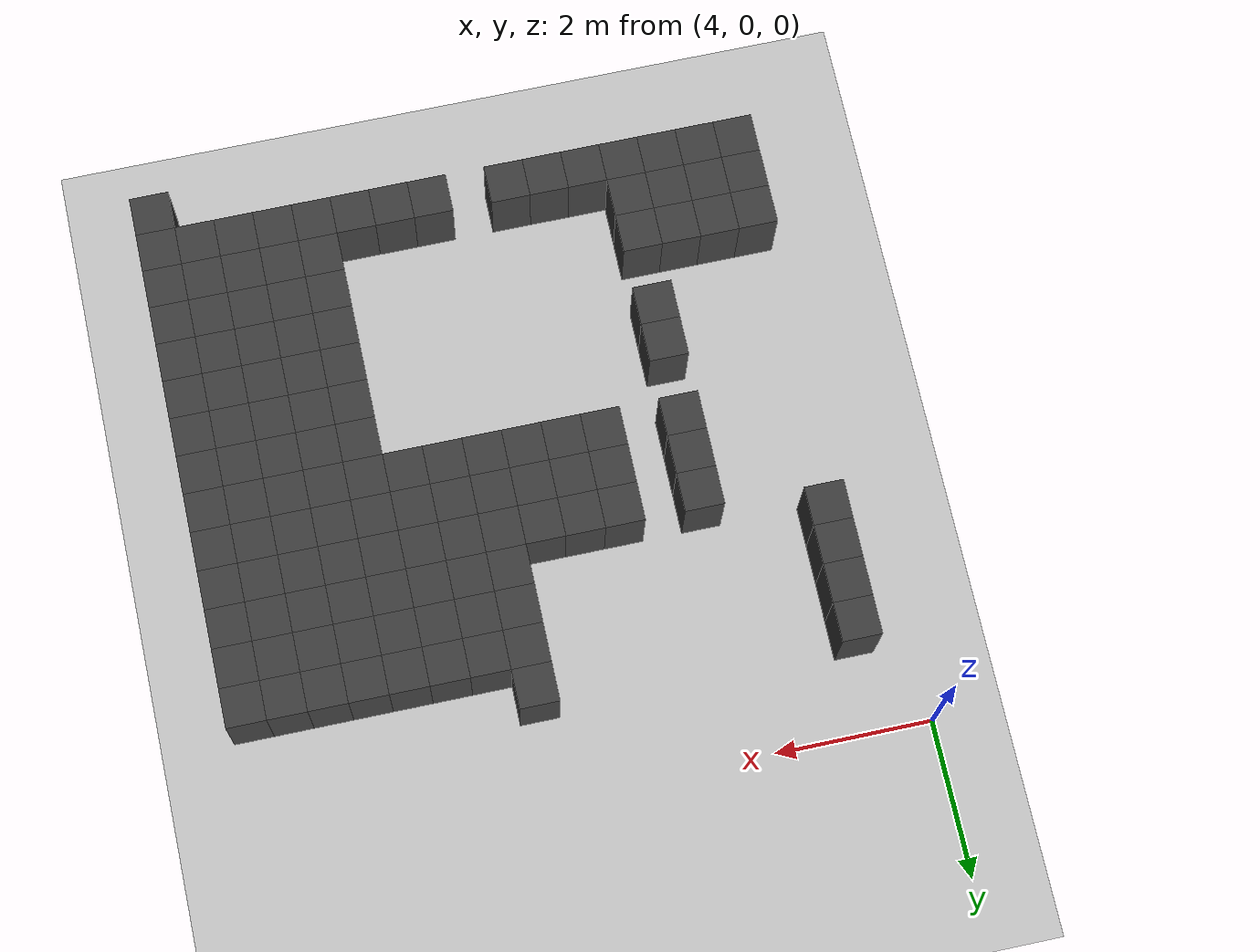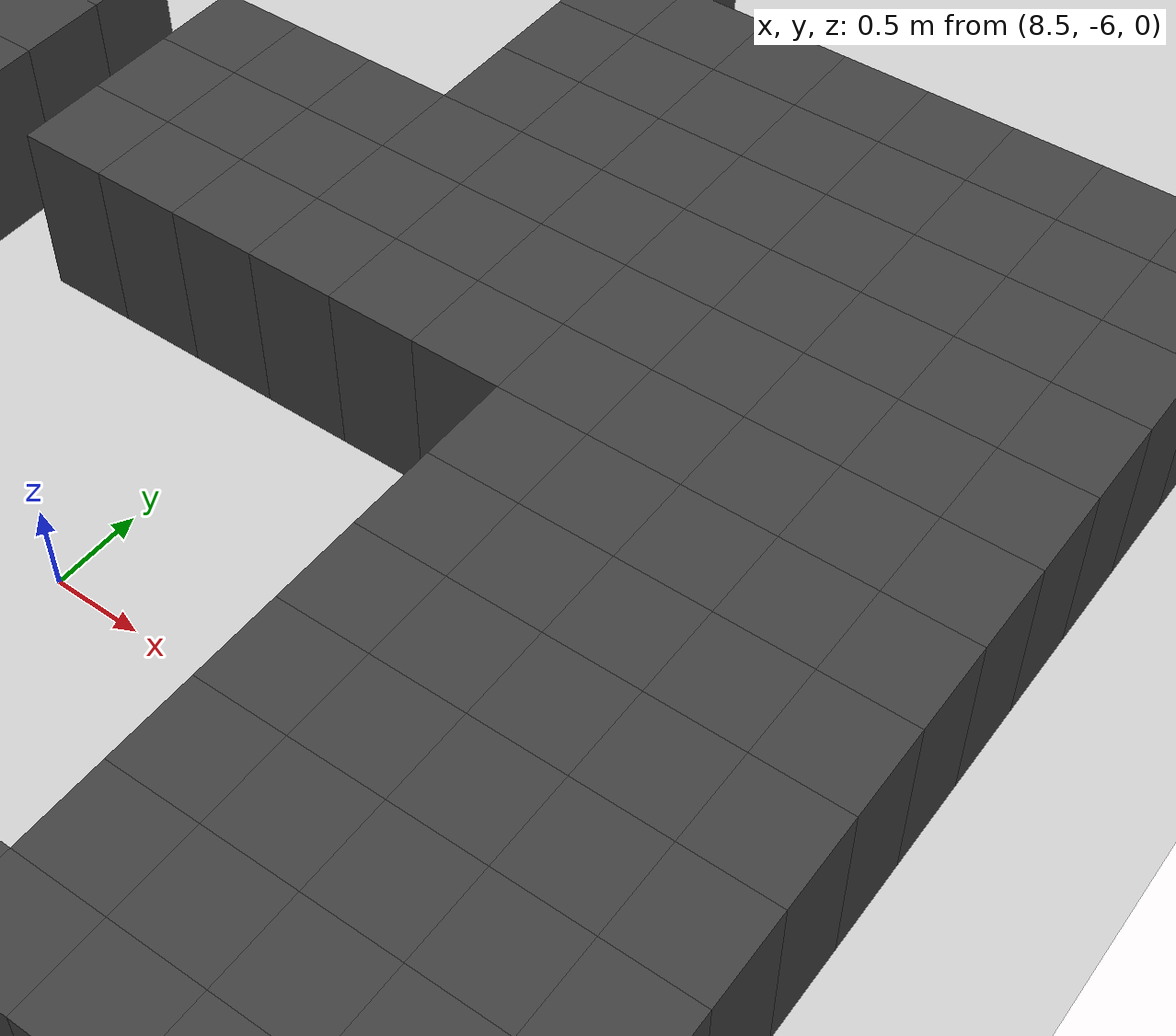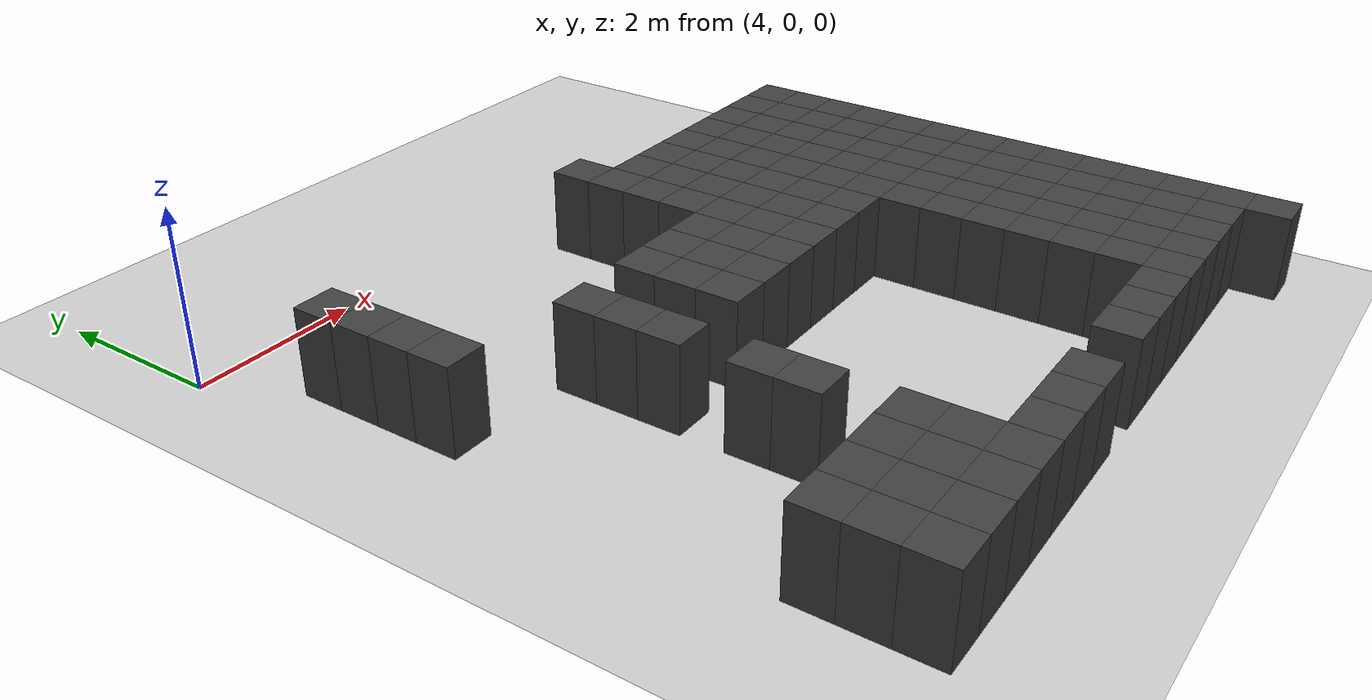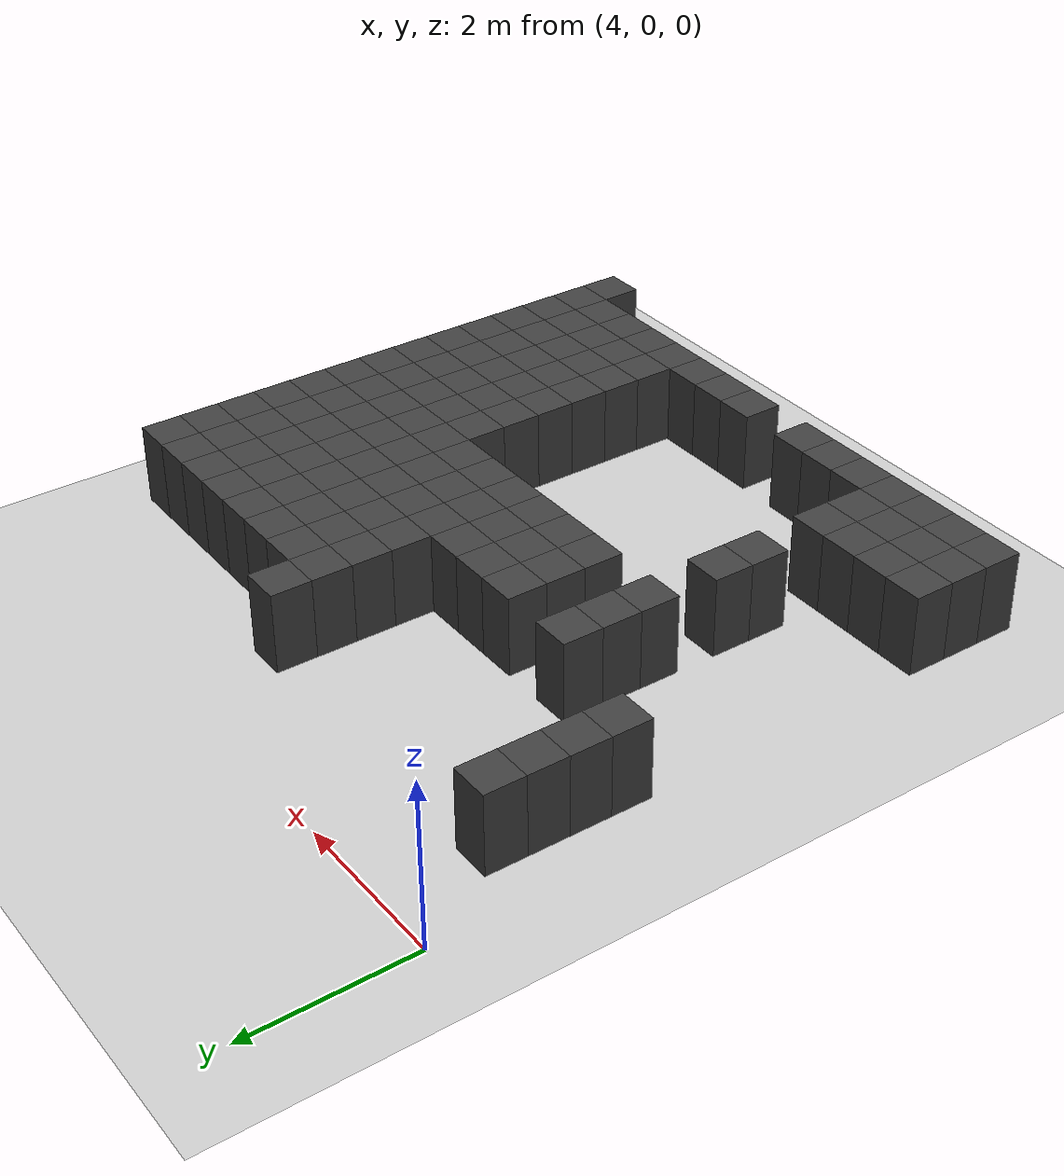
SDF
<sdf version="1.7">
 <world name="map_14706">
  <model name="ground_plane">
   <static>true</static>
   <link name="link">
    <collision name="collision">
     <geometry><plane><normal>0 0 1</normal><size>200 200</size></plane></geometry>
    </collision>
    <visual name="visual">
     <geometry><plane><normal>0 0 1</normal><size>200 200</size></plane></geometry>
     <material><ambient>0.8 0.8 0.8 1</ambient><diffuse>0.8 0.8 0.8 1</diffuse></material>
    </visual>
   </link>
  </model>
  <model name="maze_environment">
   <static>true</static>
   <link name="wall_932">
    <pose>4.750 -1.250 0.500 0 0 0</pose>
    <collision name="col"><geometry><box><size>0.5 0.5 1.0</size></box></geometry></collision>
    <visual name="vis">
     <geometry><box><size>0.5 0.5 1.0</size></box></geometry>
     <material><ambient>0.15 0.15 0.15 1</ambient><diffuse>0.25 0.25 0.25 1</diffuse></material>
    </visual>
   </link>
   <link name="wall_933">
    <pose>8.750 -1.250 0.500 0 0 0</pose>
    <collision name="col"><geometry><box><size>0.5 0.5 1.0</size></box></geometry></collision>
    <visual name="vis">
     <geometry><box><size>0.5 0.5 1.0</size></box></geometry>
     <material><ambient>0.15 0.15 0.15 1</ambient><diffuse>0.25 0.25 0.25 1</diffuse></material>
    </visual>
   </link>
   <link name="wall_974">
    <pose>4.750 -1.750 0.500 0 0 0</pose>
    <collision name="col"><geometry><box><size>0.5 0.5 1.0</size></box></geometry></collision>
    <visual name="vis">
     <geometry><box><size>0.5 0.5 1.0</size></box></geometry>
     <material><ambient>0.15 0.15 0.15 1</ambient><diffuse>0.25 0.25 0.25 1</diffuse></material>
    </visual>
   </link>
   <link name="wall_975">
    <pose>8.750 -1.750 0.500 0 0 0</pose>
    <collision name="col"><geometry><box><size>0.5 0.5 1.0</size></box></geometry></collision>
    <visual name="vis">
     <geometry><box><size>0.5 0.5 1.0</size></box></geometry>
     <material><ambient>0.15 0.15 0.15 1</ambient><diffuse>0.25 0.25 0.25 1</diffuse></material>
    </visual>
   </link>
   <link name="wall_976">
    <pose>9.250 -1.750 0.500 0 0 0</pose>
    <collision name="col"><geometry><box><size>0.5 0.5 1.0</size></box></geometry></collision>
    <visual name="vis">
     <geometry><box><size>0.5 0.5 1.0</size></box></geometry>
     <material><ambient>0.15 0.15 0.15 1</ambient><diffuse>0.25 0.25 0.25 1</diffuse></material>
    </visual>
   </link>
   <link name="wall_977">
    <pose>9.750 -1.750 0.500 0 0 0</pose>
    <collision name="col"><geometry><box><size>0.5 0.5 1.0</size></box></geometry></collision>
    <visual name="vis">
     <geometry><box><size>0.5 0.5 1.0</size></box></geometry>
     <material><ambient>0.15 0.15 0.15 1</ambient><diffuse>0.25 0.25 0.25 1</diffuse></material>
    </visual>
   </link>
   <link name="wall_978">
    <pose>10.250 -1.750 0.500 0 0 0</pose>
    <collision name="col"><geometry><box><size>0.5 0.5 1.0</size></box></geometry></collision>
    <visual name="vis">
     <geometry><box><size>0.5 0.5 1.0</size></box></geometry>
     <material><ambient>0.15 0.15 0.15 1</ambient><diffuse>0.25 0.25 0.25 1</diffuse></material>
    </visual>
   </link>
   <link name="wall_979">
    <pose>10.750 -1.750 0.500 0 0 0</pose>
    <collision name="col"><geometry><box><size>0.5 0.5 1.0</size></box></geometry></collision>
    <visual name="vis">
     <geometry><box><size>0.5 0.5 1.0</size></box></geometry>
     <material><ambient>0.15 0.15 0.15 1</ambient><diffuse>0.25 0.25 0.25 1</diffuse></material>
    </visual>
   </link>
   <link name="wall_980">
    <pose>11.250 -1.750 0.500 0 0 0</pose>
    <collision name="col"><geometry><box><size>0.5 0.5 1.0</size></box></geometry></collision>
    <visual name="vis">
     <geometry><box><size>0.5 0.5 1.0</size></box></geometry>
     <material><ambient>0.15 0.15 0.15 1</ambient><diffuse>0.25 0.25 0.25 1</diffuse></material>
    </visual>
   </link>
   <link name="wall_981">
    <pose>11.750 -1.750 0.500 0 0 0</pose>
    <collision name="col"><geometry><box><size>0.5 0.5 1.0</size></box></geometry></collision>
    <visual name="vis">
     <geometry><box><size>0.5 0.5 1.0</size></box></geometry>
     <material><ambient>0.15 0.15 0.15 1</ambient><diffuse>0.25 0.25 0.25 1</diffuse></material>
    </visual>
   </link>
   <link name="wall_982">
    <pose>12.250 -1.750 0.500 0 0 0</pose>
    <collision name="col"><geometry><box><size>0.5 0.5 1.0</size></box></geometry></collision>
    <visual name="vis">
     <geometry><box><size>0.5 0.5 1.0</size></box></geometry>
     <material><ambient>0.15 0.15 0.15 1</ambient><diffuse>0.25 0.25 0.25 1</diffuse></material>
    </visual>
   </link>
   <link name="wall_1016">
    <pose>4.750 -2.250 0.500 0 0 0</pose>
    <collision name="col"><geometry><box><size>0.5 0.5 1.0</size></box></geometry></collision>
    <visual name="vis">
     <geometry><box><size>0.5 0.5 1.0</size></box></geometry>
     <material><ambient>0.15 0.15 0.15 1</ambient><diffuse>0.25 0.25 0.25 1</diffuse></material>
    </visual>
   </link>
   <link name="wall_1017">
    <pose>8.750 -2.250 0.500 0 0 0</pose>
    <collision name="col"><geometry><box><size>0.5 0.5 1.0</size></box></geometry></collision>
    <visual name="vis">
     <geometry><box><size>0.5 0.5 1.0</size></box></geometry>
     <material><ambient>0.15 0.15 0.15 1</ambient><diffuse>0.25 0.25 0.25 1</diffuse></material>
    </visual>
   </link>
   <link name="wall_1018">
    <pose>9.250 -2.250 0.500 0 0 0</pose>
    <collision name="col"><geometry><box><size>0.5 0.5 1.0</size></box></geometry></collision>
    <visual name="vis">
     <geometry><box><size>0.5 0.5 1.0</size></box></geometry>
     <material><ambient>0.15 0.15 0.15 1</ambient><diffuse>0.25 0.25 0.25 1</diffuse></material>
    </visual>
   </link>
   <link name="wall_1019">
    <pose>9.750 -2.250 0.500 0 0 0</pose>
    <collision name="col"><geometry><box><size>0.5 0.5 1.0</size></box></geometry></collision>
    <visual name="vis">
     <geometry><box><size>0.5 0.5 1.0</size></box></geometry>
     <material><ambient>0.15 0.15 0.15 1</ambient><diffuse>0.25 0.25 0.25 1</diffuse></material>
    </visual>
   </link>
   <link name="wall_1020">
    <pose>10.250 -2.250 0.500 0 0 0</pose>
    <collision name="col"><geometry><box><size>0.5 0.5 1.0</size></box></geometry></collision>
    <visual name="vis">
     <geometry><box><size>0.5 0.5 1.0</size></box></geometry>
     <material><ambient>0.15 0.15 0.15 1</ambient><diffuse>0.25 0.25 0.25 1</diffuse></material>
    </visual>
   </link>
   <link name="wall_1021">
    <pose>10.750 -2.250 0.500 0 0 0</pose>
    <collision name="col"><geometry><box><size>0.5 0.5 1.0</size></box></geometry></collision>
    <visual name="vis">
     <geometry><box><size>0.5 0.5 1.0</size></box></geometry>
     <material><ambient>0.15 0.15 0.15 1</ambient><diffuse>0.25 0.25 0.25 1</diffuse></material>
    </visual>
   </link>
   <link name="wall_1022">
    <pose>11.250 -2.250 0.500 0 0 0</pose>
    <collision name="col"><geometry><box><size>0.5 0.5 1.0</size></box></geometry></collision>
    <visual name="vis">
     <geometry><box><size>0.5 0.5 1.0</size></box></geometry>
     <material><ambient>0.15 0.15 0.15 1</ambient><diffuse>0.25 0.25 0.25 1</diffuse></material>
    </visual>
   </link>
   <link name="wall_1023">
    <pose>11.750 -2.250 0.500 0 0 0</pose>
    <collision name="col"><geometry><box><size>0.5 0.5 1.0</size></box></geometry></collision>
    <visual name="vis">
     <geometry><box><size>0.5 0.5 1.0</size></box></geometry>
     <material><ambient>0.15 0.15 0.15 1</ambient><diffuse>0.25 0.25 0.25 1</diffuse></material>
    </visual>
   </link>
   <link name="wall_1024">
    <pose>12.250 -2.250 0.500 0 0 0</pose>
    <collision name="col"><geometry><box><size>0.5 0.5 1.0</size></box></geometry></collision>
    <visual name="vis">
     <geometry><box><size>0.5 0.5 1.0</size></box></geometry>
     <material><ambient>0.15 0.15 0.15 1</ambient><diffuse>0.25 0.25 0.25 1</diffuse></material>
    </visual>
   </link>
   <link name="wall_1058">
    <pose>4.750 -2.750 0.500 0 0 0</pose>
    <collision name="col"><geometry><box><size>0.5 0.5 1.0</size></box></geometry></collision>
    <visual name="vis">
     <geometry><box><size>0.5 0.5 1.0</size></box></geometry>
     <material><ambient>0.15 0.15 0.15 1</ambient><diffuse>0.25 0.25 0.25 1</diffuse></material>
    </visual>
   </link>
   <link name="wall_1059">
    <pose>8.750 -2.750 0.500 0 0 0</pose>
    <collision name="col"><geometry><box><size>0.5 0.5 1.0</size></box></geometry></collision>
    <visual name="vis">
     <geometry><box><size>0.5 0.5 1.0</size></box></geometry>
     <material><ambient>0.15 0.15 0.15 1</ambient><diffuse>0.25 0.25 0.25 1</diffuse></material>
    </visual>
   </link>
   <link name="wall_1060">
    <pose>9.250 -2.750 0.500 0 0 0</pose>
    <collision name="col"><geometry><box><size>0.5 0.5 1.0</size></box></geometry></collision>
    <visual name="vis">
     <geometry><box><size>0.5 0.5 1.0</size></box></geometry>
     <material><ambient>0.15 0.15 0.15 1</ambient><diffuse>0.25 0.25 0.25 1</diffuse></material>
    </visual>
   </link>
   <link name="wall_1061">
    <pose>9.750 -2.750 0.500 0 0 0</pose>
    <collision name="col"><geometry><box><size>0.5 0.5 1.0</size></box></geometry></collision>
    <visual name="vis">
     <geometry><box><size>0.5 0.5 1.0</size></box></geometry>
     <material><ambient>0.15 0.15 0.15 1</ambient><diffuse>0.25 0.25 0.25 1</diffuse></material>
    </visual>
   </link>
   <link name="wall_1062">
    <pose>10.250 -2.750 0.500 0 0 0</pose>
    <collision name="col"><geometry><box><size>0.5 0.5 1.0</size></box></geometry></collision>
    <visual name="vis">
     <geometry><box><size>0.5 0.5 1.0</size></box></geometry>
     <material><ambient>0.15 0.15 0.15 1</ambient><diffuse>0.25 0.25 0.25 1</diffuse></material>
    </visual>
   </link>
   <link name="wall_1063">
    <pose>10.750 -2.750 0.500 0 0 0</pose>
    <collision name="col"><geometry><box><size>0.5 0.5 1.0</size></box></geometry></collision>
    <visual name="vis">
     <geometry><box><size>0.5 0.5 1.0</size></box></geometry>
     <material><ambient>0.15 0.15 0.15 1</ambient><diffuse>0.25 0.25 0.25 1</diffuse></material>
    </visual>
   </link>
   <link name="wall_1064">
    <pose>11.250 -2.750 0.500 0 0 0</pose>
    <collision name="col"><geometry><box><size>0.5 0.5 1.0</size></box></geometry></collision>
    <visual name="vis">
     <geometry><box><size>0.5 0.5 1.0</size></box></geometry>
     <material><ambient>0.15 0.15 0.15 1</ambient><diffuse>0.25 0.25 0.25 1</diffuse></material>
    </visual>
   </link>
   <link name="wall_1065">
    <pose>11.750 -2.750 0.500 0 0 0</pose>
    <collision name="col"><geometry><box><size>0.5 0.5 1.0</size></box></geometry></collision>
    <visual name="vis">
     <geometry><box><size>0.5 0.5 1.0</size></box></geometry>
     <material><ambient>0.15 0.15 0.15 1</ambient><diffuse>0.25 0.25 0.25 1</diffuse></material>
    </visual>
   </link>
   <link name="wall_1066">
    <pose>12.250 -2.750 0.500 0 0 0</pose>
    <collision name="col"><geometry><box><size>0.5 0.5 1.0</size></box></geometry></collision>
    <visual name="vis">
     <geometry><box><size>0.5 0.5 1.0</size></box></geometry>
     <material><ambient>0.15 0.15 0.15 1</ambient><diffuse>0.25 0.25 0.25 1</diffuse></material>
    </visual>
   </link>
   <link name="wall_1098">
    <pose>6.250 -3.250 0.500 0 0 0</pose>
    <collision name="col"><geometry><box><size>0.5 0.5 1.0</size></box></geometry></collision>
    <visual name="vis">
     <geometry><box><size>0.5 0.5 1.0</size></box></geometry>
     <material><ambient>0.15 0.15 0.15 1</ambient><diffuse>0.25 0.25 0.25 1</diffuse></material>
    </visual>
   </link>
   <link name="wall_1099">
    <pose>7.250 -3.250 0.500 0 0 0</pose>
    <collision name="col"><geometry><box><size>0.5 0.5 1.0</size></box></geometry></collision>
    <visual name="vis">
     <geometry><box><size>0.5 0.5 1.0</size></box></geometry>
     <material><ambient>0.15 0.15 0.15 1</ambient><diffuse>0.25 0.25 0.25 1</diffuse></material>
    </visual>
   </link>
   <link name="wall_1100">
    <pose>7.750 -3.250 0.500 0 0 0</pose>
    <collision name="col"><geometry><box><size>0.5 0.5 1.0</size></box></geometry></collision>
    <visual name="vis">
     <geometry><box><size>0.5 0.5 1.0</size></box></geometry>
     <material><ambient>0.15 0.15 0.15 1</ambient><diffuse>0.25 0.25 0.25 1</diffuse></material>
    </visual>
   </link>
   <link name="wall_1101">
    <pose>8.250 -3.250 0.500 0 0 0</pose>
    <collision name="col"><geometry><box><size>0.5 0.5 1.0</size></box></geometry></collision>
    <visual name="vis">
     <geometry><box><size>0.5 0.5 1.0</size></box></geometry>
     <material><ambient>0.15 0.15 0.15 1</ambient><diffuse>0.25 0.25 0.25 1</diffuse></material>
    </visual>
   </link>
   <link name="wall_1102">
    <pose>8.750 -3.250 0.500 0 0 0</pose>
    <collision name="col"><geometry><box><size>0.5 0.5 1.0</size></box></geometry></collision>
    <visual name="vis">
     <geometry><box><size>0.5 0.5 1.0</size></box></geometry>
     <material><ambient>0.15 0.15 0.15 1</ambient><diffuse>0.25 0.25 0.25 1</diffuse></material>
    </visual>
   </link>
   <link name="wall_1103">
    <pose>9.250 -3.250 0.500 0 0 0</pose>
    <collision name="col"><geometry><box><size>0.5 0.5 1.0</size></box></geometry></collision>
    <visual name="vis">
     <geometry><box><size>0.5 0.5 1.0</size></box></geometry>
     <material><ambient>0.15 0.15 0.15 1</ambient><diffuse>0.25 0.25 0.25 1</diffuse></material>
    </visual>
   </link>
   <link name="wall_1104">
    <pose>9.750 -3.250 0.500 0 0 0</pose>
    <collision name="col"><geometry><box><size>0.5 0.5 1.0</size></box></geometry></collision>
    <visual name="vis">
     <geometry><box><size>0.5 0.5 1.0</size></box></geometry>
     <material><ambient>0.15 0.15 0.15 1</ambient><diffuse>0.25 0.25 0.25 1</diffuse></material>
    </visual>
   </link>
   <link name="wall_1105">
    <pose>10.250 -3.250 0.500 0 0 0</pose>
    <collision name="col"><geometry><box><size>0.5 0.5 1.0</size></box></geometry></collision>
    <visual name="vis">
     <geometry><box><size>0.5 0.5 1.0</size></box></geometry>
     <material><ambient>0.15 0.15 0.15 1</ambient><diffuse>0.25 0.25 0.25 1</diffuse></material>
    </visual>
   </link>
   <link name="wall_1106">
    <pose>10.750 -3.250 0.500 0 0 0</pose>
    <collision name="col"><geometry><box><size>0.5 0.5 1.0</size></box></geometry></collision>
    <visual name="vis">
     <geometry><box><size>0.5 0.5 1.0</size></box></geometry>
     <material><ambient>0.15 0.15 0.15 1</ambient><diffuse>0.25 0.25 0.25 1</diffuse></material>
    </visual>
   </link>
   <link name="wall_1107">
    <pose>11.250 -3.250 0.500 0 0 0</pose>
    <collision name="col"><geometry><box><size>0.5 0.5 1.0</size></box></geometry></collision>
    <visual name="vis">
     <geometry><box><size>0.5 0.5 1.0</size></box></geometry>
     <material><ambient>0.15 0.15 0.15 1</ambient><diffuse>0.25 0.25 0.25 1</diffuse></material>
    </visual>
   </link>
   <link name="wall_1108">
    <pose>11.750 -3.250 0.500 0 0 0</pose>
    <collision name="col"><geometry><box><size>0.5 0.5 1.0</size></box></geometry></collision>
    <visual name="vis">
     <geometry><box><size>0.5 0.5 1.0</size></box></geometry>
     <material><ambient>0.15 0.15 0.15 1</ambient><diffuse>0.25 0.25 0.25 1</diffuse></material>
    </visual>
   </link>
   <link name="wall_1109">
    <pose>12.250 -3.250 0.500 0 0 0</pose>
    <collision name="col"><geometry><box><size>0.5 0.5 1.0</size></box></geometry></collision>
    <visual name="vis">
     <geometry><box><size>0.5 0.5 1.0</size></box></geometry>
     <material><ambient>0.15 0.15 0.15 1</ambient><diffuse>0.25 0.25 0.25 1</diffuse></material>
    </visual>
   </link>
   <link name="wall_1141">
    <pose>6.250 -3.750 0.500 0 0 0</pose>
    <collision name="col"><geometry><box><size>0.5 0.5 1.0</size></box></geometry></collision>
    <visual name="vis">
     <geometry><box><size>0.5 0.5 1.0</size></box></geometry>
     <material><ambient>0.15 0.15 0.15 1</ambient><diffuse>0.25 0.25 0.25 1</diffuse></material>
    </visual>
   </link>
   <link name="wall_1142">
    <pose>7.250 -3.750 0.500 0 0 0</pose>
    <collision name="col"><geometry><box><size>0.5 0.5 1.0</size></box></geometry></collision>
    <visual name="vis">
     <geometry><box><size>0.5 0.5 1.0</size></box></geometry>
     <material><ambient>0.15 0.15 0.15 1</ambient><diffuse>0.25 0.25 0.25 1</diffuse></material>
    </visual>
   </link>
   <link name="wall_1143">
    <pose>7.750 -3.750 0.500 0 0 0</pose>
    <collision name="col"><geometry><box><size>0.5 0.5 1.0</size></box></geometry></collision>
    <visual name="vis">
     <geometry><box><size>0.5 0.5 1.0</size></box></geometry>
     <material><ambient>0.15 0.15 0.15 1</ambient><diffuse>0.25 0.25 0.25 1</diffuse></material>
    </visual>
   </link>
   <link name="wall_1144">
    <pose>8.250 -3.750 0.500 0 0 0</pose>
    <collision name="col"><geometry><box><size>0.5 0.5 1.0</size></box></geometry></collision>
    <visual name="vis">
     <geometry><box><size>0.5 0.5 1.0</size></box></geometry>
     <material><ambient>0.15 0.15 0.15 1</ambient><diffuse>0.25 0.25 0.25 1</diffuse></material>
    </visual>
   </link>
   <link name="wall_1145">
    <pose>8.750 -3.750 0.500 0 0 0</pose>
    <collision name="col"><geometry><box><size>0.5 0.5 1.0</size></box></geometry></collision>
    <visual name="vis">
     <geometry><box><size>0.5 0.5 1.0</size></box></geometry>
     <material><ambient>0.15 0.15 0.15 1</ambient><diffuse>0.25 0.25 0.25 1</diffuse></material>
    </visual>
   </link>
   <link name="wall_1146">
    <pose>9.250 -3.750 0.500 0 0 0</pose>
    <collision name="col"><geometry><box><size>0.5 0.5 1.0</size></box></geometry></collision>
    <visual name="vis">
     <geometry><box><size>0.5 0.5 1.0</size></box></geometry>
     <material><ambient>0.15 0.15 0.15 1</ambient><diffuse>0.25 0.25 0.25 1</diffuse></material>
    </visual>
   </link>
   <link name="wall_1147">
    <pose>9.750 -3.750 0.500 0 0 0</pose>
    <collision name="col"><geometry><box><size>0.5 0.5 1.0</size></box></geometry></collision>
    <visual name="vis">
     <geometry><box><size>0.5 0.5 1.0</size></box></geometry>
     <material><ambient>0.15 0.15 0.15 1</ambient><diffuse>0.25 0.25 0.25 1</diffuse></material>
    </visual>
   </link>
   <link name="wall_1148">
    <pose>10.250 -3.750 0.500 0 0 0</pose>
    <collision name="col"><geometry><box><size>0.5 0.5 1.0</size></box></geometry></collision>
    <visual name="vis">
     <geometry><box><size>0.5 0.5 1.0</size></box></geometry>
     <material><ambient>0.15 0.15 0.15 1</ambient><diffuse>0.25 0.25 0.25 1</diffuse></material>
    </visual>
   </link>
   <link name="wall_1149">
    <pose>10.750 -3.750 0.500 0 0 0</pose>
    <collision name="col"><geometry><box><size>0.5 0.5 1.0</size></box></geometry></collision>
    <visual name="vis">
     <geometry><box><size>0.5 0.5 1.0</size></box></geometry>
     <material><ambient>0.15 0.15 0.15 1</ambient><diffuse>0.25 0.25 0.25 1</diffuse></material>
    </visual>
   </link>
   <link name="wall_1150">
    <pose>11.250 -3.750 0.500 0 0 0</pose>
    <collision name="col"><geometry><box><size>0.5 0.5 1.0</size></box></geometry></collision>
    <visual name="vis">
     <geometry><box><size>0.5 0.5 1.0</size></box></geometry>
     <material><ambient>0.15 0.15 0.15 1</ambient><diffuse>0.25 0.25 0.25 1</diffuse></material>
    </visual>
   </link>
   <link name="wall_1151">
    <pose>11.750 -3.750 0.500 0 0 0</pose>
    <collision name="col"><geometry><box><size>0.5 0.5 1.0</size></box></geometry></collision>
    <visual name="vis">
     <geometry><box><size>0.5 0.5 1.0</size></box></geometry>
     <material><ambient>0.15 0.15 0.15 1</ambient><diffuse>0.25 0.25 0.25 1</diffuse></material>
    </visual>
   </link>
   <link name="wall_1152">
    <pose>12.250 -3.750 0.500 0 0 0</pose>
    <collision name="col"><geometry><box><size>0.5 0.5 1.0</size></box></geometry></collision>
    <visual name="vis">
     <geometry><box><size>0.5 0.5 1.0</size></box></geometry>
     <material><ambient>0.15 0.15 0.15 1</ambient><diffuse>0.25 0.25 0.25 1</diffuse></material>
    </visual>
   </link>
   <link name="wall_1184">
    <pose>6.250 -4.250 0.500 0 0 0</pose>
    <collision name="col"><geometry><box><size>0.5 0.5 1.0</size></box></geometry></collision>
    <visual name="vis">
     <geometry><box><size>0.5 0.5 1.0</size></box></geometry>
     <material><ambient>0.15 0.15 0.15 1</ambient><diffuse>0.25 0.25 0.25 1</diffuse></material>
    </visual>
   </link>
   <link name="wall_1185">
    <pose>7.250 -4.250 0.500 0 0 0</pose>
    <collision name="col"><geometry><box><size>0.5 0.5 1.0</size></box></geometry></collision>
    <visual name="vis">
     <geometry><box><size>0.5 0.5 1.0</size></box></geometry>
     <material><ambient>0.15 0.15 0.15 1</ambient><diffuse>0.25 0.25 0.25 1</diffuse></material>
    </visual>
   </link>
   <link name="wall_1186">
    <pose>7.750 -4.250 0.500 0 0 0</pose>
    <collision name="col"><geometry><box><size>0.5 0.5 1.0</size></box></geometry></collision>
    <visual name="vis">
     <geometry><box><size>0.5 0.5 1.0</size></box></geometry>
     <material><ambient>0.15 0.15 0.15 1</ambient><diffuse>0.25 0.25 0.25 1</diffuse></material>
    </visual>
   </link>
   <link name="wall_1187">
    <pose>8.250 -4.250 0.500 0 0 0</pose>
    <collision name="col"><geometry><box><size>0.5 0.5 1.0</size></box></geometry></collision>
    <visual name="vis">
     <geometry><box><size>0.5 0.5 1.0</size></box></geometry>
     <material><ambient>0.15 0.15 0.15 1</ambient><diffuse>0.25 0.25 0.25 1</diffuse></material>
    </visual>
   </link>
   <link name="wall_1188">
    <pose>8.750 -4.250 0.500 0 0 0</pose>
    <collision name="col"><geometry><box><size>0.5 0.5 1.0</size></box></geometry></collision>
    <visual name="vis">
     <geometry><box><size>0.5 0.5 1.0</size></box></geometry>
     <material><ambient>0.15 0.15 0.15 1</ambient><diffuse>0.25 0.25 0.25 1</diffuse></material>
    </visual>
   </link>
   <link name="wall_1189">
    <pose>9.250 -4.250 0.500 0 0 0</pose>
    <collision name="col"><geometry><box><size>0.5 0.5 1.0</size></box></geometry></collision>
    <visual name="vis">
     <geometry><box><size>0.5 0.5 1.0</size></box></geometry>
     <material><ambient>0.15 0.15 0.15 1</ambient><diffuse>0.25 0.25 0.25 1</diffuse></material>
    </visual>
   </link>
   <link name="wall_1190">
    <pose>9.750 -4.250 0.500 0 0 0</pose>
    <collision name="col"><geometry><box><size>0.5 0.5 1.0</size></box></geometry></collision>
    <visual name="vis">
     <geometry><box><size>0.5 0.5 1.0</size></box></geometry>
     <material><ambient>0.15 0.15 0.15 1</ambient><diffuse>0.25 0.25 0.25 1</diffuse></material>
    </visual>
   </link>
   <link name="wall_1191">
    <pose>10.250 -4.250 0.500 0 0 0</pose>
    <collision name="col"><geometry><box><size>0.5 0.5 1.0</size></box></geometry></collision>
    <visual name="vis">
     <geometry><box><size>0.5 0.5 1.0</size></box></geometry>
     <material><ambient>0.15 0.15 0.15 1</ambient><diffuse>0.25 0.25 0.25 1</diffuse></material>
    </visual>
   </link>
   <link name="wall_1192">
    <pose>10.750 -4.250 0.500 0 0 0</pose>
    <collision name="col"><geometry><box><size>0.5 0.5 1.0</size></box></geometry></collision>
    <visual name="vis">
     <geometry><box><size>0.5 0.5 1.0</size></box></geometry>
     <material><ambient>0.15 0.15 0.15 1</ambient><diffuse>0.25 0.25 0.25 1</diffuse></material>
    </visual>
   </link>
   <link name="wall_1193">
    <pose>11.250 -4.250 0.500 0 0 0</pose>
    <collision name="col"><geometry><box><size>0.5 0.5 1.0</size></box></geometry></collision>
    <visual name="vis">
     <geometry><box><size>0.5 0.5 1.0</size></box></geometry>
     <material><ambient>0.15 0.15 0.15 1</ambient><diffuse>0.25 0.25 0.25 1</diffuse></material>
    </visual>
   </link>
   <link name="wall_1194">
    <pose>11.750 -4.250 0.500 0 0 0</pose>
    <collision name="col"><geometry><box><size>0.5 0.5 1.0</size></box></geometry></collision>
    <visual name="vis">
     <geometry><box><size>0.5 0.5 1.0</size></box></geometry>
     <material><ambient>0.15 0.15 0.15 1</ambient><diffuse>0.25 0.25 0.25 1</diffuse></material>
    </visual>
   </link>
   <link name="wall_1195">
    <pose>12.250 -4.250 0.500 0 0 0</pose>
    <collision name="col"><geometry><box><size>0.5 0.5 1.0</size></box></geometry></collision>
    <visual name="vis">
     <geometry><box><size>0.5 0.5 1.0</size></box></geometry>
     <material><ambient>0.15 0.15 0.15 1</ambient><diffuse>0.25 0.25 0.25 1</diffuse></material>
    </visual>
   </link>
   <link name="wall_1227">
    <pose>10.250 -4.750 0.500 0 0 0</pose>
    <collision name="col"><geometry><box><size>0.5 0.5 1.0</size></box></geometry></collision>
    <visual name="vis">
     <geometry><box><size>0.5 0.5 1.0</size></box></geometry>
     <material><ambient>0.15 0.15 0.15 1</ambient><diffuse>0.25 0.25 0.25 1</diffuse></material>
    </visual>
   </link>
   <link name="wall_1228">
    <pose>10.750 -4.750 0.500 0 0 0</pose>
    <collision name="col"><geometry><box><size>0.5 0.5 1.0</size></box></geometry></collision>
    <visual name="vis">
     <geometry><box><size>0.5 0.5 1.0</size></box></geometry>
     <material><ambient>0.15 0.15 0.15 1</ambient><diffuse>0.25 0.25 0.25 1</diffuse></material>
    </visual>
   </link>
   <link name="wall_1229">
    <pose>11.250 -4.750 0.500 0 0 0</pose>
    <collision name="col"><geometry><box><size>0.5 0.5 1.0</size></box></geometry></collision>
    <visual name="vis">
     <geometry><box><size>0.5 0.5 1.0</size></box></geometry>
     <material><ambient>0.15 0.15 0.15 1</ambient><diffuse>0.25 0.25 0.25 1</diffuse></material>
    </visual>
   </link>
   <link name="wall_1230">
    <pose>11.750 -4.750 0.500 0 0 0</pose>
    <collision name="col"><geometry><box><size>0.5 0.5 1.0</size></box></geometry></collision>
    <visual name="vis">
     <geometry><box><size>0.5 0.5 1.0</size></box></geometry>
     <material><ambient>0.15 0.15 0.15 1</ambient><diffuse>0.25 0.25 0.25 1</diffuse></material>
    </visual>
   </link>
   <link name="wall_1231">
    <pose>12.250 -4.750 0.500 0 0 0</pose>
    <collision name="col"><geometry><box><size>0.5 0.5 1.0</size></box></geometry></collision>
    <visual name="vis">
     <geometry><box><size>0.5 0.5 1.0</size></box></geometry>
     <material><ambient>0.15 0.15 0.15 1</ambient><diffuse>0.25 0.25 0.25 1</diffuse></material>
    </visual>
   </link>
   <link name="wall_1263">
    <pose>6.250 -5.250 0.500 0 0 0</pose>
    <collision name="col"><geometry><box><size>0.5 0.5 1.0</size></box></geometry></collision>
    <visual name="vis">
     <geometry><box><size>0.5 0.5 1.0</size></box></geometry>
     <material><ambient>0.15 0.15 0.15 1</ambient><diffuse>0.25 0.25 0.25 1</diffuse></material>
    </visual>
   </link>
   <link name="wall_1264">
    <pose>10.250 -5.250 0.500 0 0 0</pose>
    <collision name="col"><geometry><box><size>0.5 0.5 1.0</size></box></geometry></collision>
    <visual name="vis">
     <geometry><box><size>0.5 0.5 1.0</size></box></geometry>
     <material><ambient>0.15 0.15 0.15 1</ambient><diffuse>0.25 0.25 0.25 1</diffuse></material>
    </visual>
   </link>
   <link name="wall_1265">
    <pose>10.750 -5.250 0.500 0 0 0</pose>
    <collision name="col"><geometry><box><size>0.5 0.5 1.0</size></box></geometry></collision>
    <visual name="vis">
     <geometry><box><size>0.5 0.5 1.0</size></box></geometry>
     <material><ambient>0.15 0.15 0.15 1</ambient><diffuse>0.25 0.25 0.25 1</diffuse></material>
    </visual>
   </link>
   <link name="wall_1266">
    <pose>11.250 -5.250 0.500 0 0 0</pose>
    <collision name="col"><geometry><box><size>0.5 0.5 1.0</size></box></geometry></collision>
    <visual name="vis">
     <geometry><box><size>0.5 0.5 1.0</size></box></geometry>
     <material><ambient>0.15 0.15 0.15 1</ambient><diffuse>0.25 0.25 0.25 1</diffuse></material>
    </visual>
   </link>
   <link name="wall_1267">
    <pose>11.750 -5.250 0.500 0 0 0</pose>
    <collision name="col"><geometry><box><size>0.5 0.5 1.0</size></box></geometry></collision>
    <visual name="vis">
     <geometry><box><size>0.5 0.5 1.0</size></box></geometry>
     <material><ambient>0.15 0.15 0.15 1</ambient><diffuse>0.25 0.25 0.25 1</diffuse></material>
    </visual>
   </link>
   <link name="wall_1268">
    <pose>12.250 -5.250 0.500 0 0 0</pose>
    <collision name="col"><geometry><box><size>0.5 0.5 1.0</size></box></geometry></collision>
    <visual name="vis">
     <geometry><box><size>0.5 0.5 1.0</size></box></geometry>
     <material><ambient>0.15 0.15 0.15 1</ambient><diffuse>0.25 0.25 0.25 1</diffuse></material>
    </visual>
   </link>
   <link name="wall_1300">
    <pose>6.250 -5.750 0.500 0 0 0</pose>
    <collision name="col"><geometry><box><size>0.5 0.5 1.0</size></box></geometry></collision>
    <visual name="vis">
     <geometry><box><size>0.5 0.5 1.0</size></box></geometry>
     <material><ambient>0.15 0.15 0.15 1</ambient><diffuse>0.25 0.25 0.25 1</diffuse></material>
    </visual>
   </link>
   <link name="wall_1301">
    <pose>10.250 -5.750 0.500 0 0 0</pose>
    <collision name="col"><geometry><box><size>0.5 0.5 1.0</size></box></geometry></collision>
    <visual name="vis">
     <geometry><box><size>0.5 0.5 1.0</size></box></geometry>
     <material><ambient>0.15 0.15 0.15 1</ambient><diffuse>0.25 0.25 0.25 1</diffuse></material>
    </visual>
   </link>
   <link name="wall_1302">
    <pose>10.750 -5.750 0.500 0 0 0</pose>
    <collision name="col"><geometry><box><size>0.5 0.5 1.0</size></box></geometry></collision>
    <visual name="vis">
     <geometry><box><size>0.5 0.5 1.0</size></box></geometry>
     <material><ambient>0.15 0.15 0.15 1</ambient><diffuse>0.25 0.25 0.25 1</diffuse></material>
    </visual>
   </link>
   <link name="wall_1303">
    <pose>11.250 -5.750 0.500 0 0 0</pose>
    <collision name="col"><geometry><box><size>0.5 0.5 1.0</size></box></geometry></collision>
    <visual name="vis">
     <geometry><box><size>0.5 0.5 1.0</size></box></geometry>
     <material><ambient>0.15 0.15 0.15 1</ambient><diffuse>0.25 0.25 0.25 1</diffuse></material>
    </visual>
   </link>
   <link name="wall_1304">
    <pose>11.750 -5.750 0.500 0 0 0</pose>
    <collision name="col"><geometry><box><size>0.5 0.5 1.0</size></box></geometry></collision>
    <visual name="vis">
     <geometry><box><size>0.5 0.5 1.0</size></box></geometry>
     <material><ambient>0.15 0.15 0.15 1</ambient><diffuse>0.25 0.25 0.25 1</diffuse></material>
    </visual>
   </link>
   <link name="wall_1305">
    <pose>12.250 -5.750 0.500 0 0 0</pose>
    <collision name="col"><geometry><box><size>0.5 0.5 1.0</size></box></geometry></collision>
    <visual name="vis">
     <geometry><box><size>0.5 0.5 1.0</size></box></geometry>
     <material><ambient>0.15 0.15 0.15 1</ambient><diffuse>0.25 0.25 0.25 1</diffuse></material>
    </visual>
   </link>
   <link name="wall_1337">
    <pose>10.250 -6.250 0.500 0 0 0</pose>
    <collision name="col"><geometry><box><size>0.5 0.5 1.0</size></box></geometry></collision>
    <visual name="vis">
     <geometry><box><size>0.5 0.5 1.0</size></box></geometry>
     <material><ambient>0.15 0.15 0.15 1</ambient><diffuse>0.25 0.25 0.25 1</diffuse></material>
    </visual>
   </link>
   <link name="wall_1338">
    <pose>10.750 -6.250 0.500 0 0 0</pose>
    <collision name="col"><geometry><box><size>0.5 0.5 1.0</size></box></geometry></collision>
    <visual name="vis">
     <geometry><box><size>0.5 0.5 1.0</size></box></geometry>
     <material><ambient>0.15 0.15 0.15 1</ambient><diffuse>0.25 0.25 0.25 1</diffuse></material>
    </visual>
   </link>
   <link name="wall_1339">
    <pose>11.250 -6.250 0.500 0 0 0</pose>
    <collision name="col"><geometry><box><size>0.5 0.5 1.0</size></box></geometry></collision>
    <visual name="vis">
     <geometry><box><size>0.5 0.5 1.0</size></box></geometry>
     <material><ambient>0.15 0.15 0.15 1</ambient><diffuse>0.25 0.25 0.25 1</diffuse></material>
    </visual>
   </link>
   <link name="wall_1340">
    <pose>11.750 -6.250 0.500 0 0 0</pose>
    <collision name="col"><geometry><box><size>0.5 0.5 1.0</size></box></geometry></collision>
    <visual name="vis">
     <geometry><box><size>0.5 0.5 1.0</size></box></geometry>
     <material><ambient>0.15 0.15 0.15 1</ambient><diffuse>0.25 0.25 0.25 1</diffuse></material>
    </visual>
   </link>
   <link name="wall_1341">
    <pose>12.250 -6.250 0.500 0 0 0</pose>
    <collision name="col"><geometry><box><size>0.5 0.5 1.0</size></box></geometry></collision>
    <visual name="vis">
     <geometry><box><size>0.5 0.5 1.0</size></box></geometry>
     <material><ambient>0.15 0.15 0.15 1</ambient><diffuse>0.25 0.25 0.25 1</diffuse></material>
    </visual>
   </link>
   <link name="wall_1375">
    <pose>4.750 -6.750 0.500 0 0 0</pose>
    <collision name="col"><geometry><box><size>0.5 0.5 1.0</size></box></geometry></collision>
    <visual name="vis">
     <geometry><box><size>0.5 0.5 1.0</size></box></geometry>
     <material><ambient>0.15 0.15 0.15 1</ambient><diffuse>0.25 0.25 0.25 1</diffuse></material>
    </visual>
   </link>
   <link name="wall_1376">
    <pose>5.250 -6.750 0.500 0 0 0</pose>
    <collision name="col"><geometry><box><size>0.5 0.5 1.0</size></box></geometry></collision>
    <visual name="vis">
     <geometry><box><size>0.5 0.5 1.0</size></box></geometry>
     <material><ambient>0.15 0.15 0.15 1</ambient><diffuse>0.25 0.25 0.25 1</diffuse></material>
    </visual>
   </link>
   <link name="wall_1377">
    <pose>5.750 -6.750 0.500 0 0 0</pose>
    <collision name="col"><geometry><box><size>0.5 0.5 1.0</size></box></geometry></collision>
    <visual name="vis">
     <geometry><box><size>0.5 0.5 1.0</size></box></geometry>
     <material><ambient>0.15 0.15 0.15 1</ambient><diffuse>0.25 0.25 0.25 1</diffuse></material>
    </visual>
   </link>
   <link name="wall_1378">
    <pose>6.250 -6.750 0.500 0 0 0</pose>
    <collision name="col"><geometry><box><size>0.5 0.5 1.0</size></box></geometry></collision>
    <visual name="vis">
     <geometry><box><size>0.5 0.5 1.0</size></box></geometry>
     <material><ambient>0.15 0.15 0.15 1</ambient><diffuse>0.25 0.25 0.25 1</diffuse></material>
    </visual>
   </link>
   <link name="wall_1379">
    <pose>10.250 -6.750 0.500 0 0 0</pose>
    <collision name="col"><geometry><box><size>0.5 0.5 1.0</size></box></geometry></collision>
    <visual name="vis">
     <geometry><box><size>0.5 0.5 1.0</size></box></geometry>
     <material><ambient>0.15 0.15 0.15 1</ambient><diffuse>0.25 0.25 0.25 1</diffuse></material>
    </visual>
   </link>
   <link name="wall_1380">
    <pose>10.750 -6.750 0.500 0 0 0</pose>
    <collision name="col"><geometry><box><size>0.5 0.5 1.0</size></box></geometry></collision>
    <visual name="vis">
     <geometry><box><size>0.5 0.5 1.0</size></box></geometry>
     <material><ambient>0.15 0.15 0.15 1</ambient><diffuse>0.25 0.25 0.25 1</diffuse></material>
    </visual>
   </link>
   <link name="wall_1381">
    <pose>11.250 -6.750 0.500 0 0 0</pose>
    <collision name="col"><geometry><box><size>0.5 0.5 1.0</size></box></geometry></collision>
    <visual name="vis">
     <geometry><box><size>0.5 0.5 1.0</size></box></geometry>
     <material><ambient>0.15 0.15 0.15 1</ambient><diffuse>0.25 0.25 0.25 1</diffuse></material>
    </visual>
   </link>
   <link name="wall_1382">
    <pose>11.750 -6.750 0.500 0 0 0</pose>
    <collision name="col"><geometry><box><size>0.5 0.5 1.0</size></box></geometry></collision>
    <visual name="vis">
     <geometry><box><size>0.5 0.5 1.0</size></box></geometry>
     <material><ambient>0.15 0.15 0.15 1</ambient><diffuse>0.25 0.25 0.25 1</diffuse></material>
    </visual>
   </link>
   <link name="wall_1383">
    <pose>12.250 -6.750 0.500 0 0 0</pose>
    <collision name="col"><geometry><box><size>0.5 0.5 1.0</size></box></geometry></collision>
    <visual name="vis">
     <geometry><box><size>0.5 0.5 1.0</size></box></geometry>
     <material><ambient>0.15 0.15 0.15 1</ambient><diffuse>0.25 0.25 0.25 1</diffuse></material>
    </visual>
   </link>
   <link name="wall_1417">
    <pose>4.750 -7.250 0.500 0 0 0</pose>
    <collision name="col"><geometry><box><size>0.5 0.5 1.0</size></box></geometry></collision>
    <visual name="vis">
     <geometry><box><size>0.5 0.5 1.0</size></box></geometry>
     <material><ambient>0.15 0.15 0.15 1</ambient><diffuse>0.25 0.25 0.25 1</diffuse></material>
    </visual>
   </link>
   <link name="wall_1418">
    <pose>5.250 -7.250 0.500 0 0 0</pose>
    <collision name="col"><geometry><box><size>0.5 0.5 1.0</size></box></geometry></collision>
    <visual name="vis">
     <geometry><box><size>0.5 0.5 1.0</size></box></geometry>
     <material><ambient>0.15 0.15 0.15 1</ambient><diffuse>0.25 0.25 0.25 1</diffuse></material>
    </visual>
   </link>
   <link name="wall_1419">
    <pose>5.750 -7.250 0.500 0 0 0</pose>
    <collision name="col"><geometry><box><size>0.5 0.5 1.0</size></box></geometry></collision>
    <visual name="vis">
     <geometry><box><size>0.5 0.5 1.0</size></box></geometry>
     <material><ambient>0.15 0.15 0.15 1</ambient><diffuse>0.25 0.25 0.25 1</diffuse></material>
    </visual>
   </link>
   <link name="wall_1420">
    <pose>6.250 -7.250 0.500 0 0 0</pose>
    <collision name="col"><geometry><box><size>0.5 0.5 1.0</size></box></geometry></collision>
    <visual name="vis">
     <geometry><box><size>0.5 0.5 1.0</size></box></geometry>
     <material><ambient>0.15 0.15 0.15 1</ambient><diffuse>0.25 0.25 0.25 1</diffuse></material>
    </visual>
   </link>
   <link name="wall_1421">
    <pose>10.250 -7.250 0.500 0 0 0</pose>
    <collision name="col"><geometry><box><size>0.5 0.5 1.0</size></box></geometry></collision>
    <visual name="vis">
     <geometry><box><size>0.5 0.5 1.0</size></box></geometry>
     <material><ambient>0.15 0.15 0.15 1</ambient><diffuse>0.25 0.25 0.25 1</diffuse></material>
    </visual>
   </link>
   <link name="wall_1422">
    <pose>10.750 -7.250 0.500 0 0 0</pose>
    <collision name="col"><geometry><box><size>0.5 0.5 1.0</size></box></geometry></collision>
    <visual name="vis">
     <geometry><box><size>0.5 0.5 1.0</size></box></geometry>
     <material><ambient>0.15 0.15 0.15 1</ambient><diffuse>0.25 0.25 0.25 1</diffuse></material>
    </visual>
   </link>
   <link name="wall_1423">
    <pose>11.250 -7.250 0.500 0 0 0</pose>
    <collision name="col"><geometry><box><size>0.5 0.5 1.0</size></box></geometry></collision>
    <visual name="vis">
     <geometry><box><size>0.5 0.5 1.0</size></box></geometry>
     <material><ambient>0.15 0.15 0.15 1</ambient><diffuse>0.25 0.25 0.25 1</diffuse></material>
    </visual>
   </link>
   <link name="wall_1424">
    <pose>11.750 -7.250 0.500 0 0 0</pose>
    <collision name="col"><geometry><box><size>0.5 0.5 1.0</size></box></geometry></collision>
    <visual name="vis">
     <geometry><box><size>0.5 0.5 1.0</size></box></geometry>
     <material><ambient>0.15 0.15 0.15 1</ambient><diffuse>0.25 0.25 0.25 1</diffuse></material>
    </visual>
   </link>
   <link name="wall_1425">
    <pose>12.250 -7.250 0.500 0 0 0</pose>
    <collision name="col"><geometry><box><size>0.5 0.5 1.0</size></box></geometry></collision>
    <visual name="vis">
     <geometry><box><size>0.5 0.5 1.0</size></box></geometry>
     <material><ambient>0.15 0.15 0.15 1</ambient><diffuse>0.25 0.25 0.25 1</diffuse></material>
    </visual>
   </link>
   <link name="wall_1459">
    <pose>4.750 -7.750 0.500 0 0 0</pose>
    <collision name="col"><geometry><box><size>0.5 0.5 1.0</size></box></geometry></collision>
    <visual name="vis">
     <geometry><box><size>0.5 0.5 1.0</size></box></geometry>
     <material><ambient>0.15 0.15 0.15 1</ambient><diffuse>0.25 0.25 0.25 1</diffuse></material>
    </visual>
   </link>
   <link name="wall_1460">
    <pose>5.250 -7.750 0.500 0 0 0</pose>
    <collision name="col"><geometry><box><size>0.5 0.5 1.0</size></box></geometry></collision>
    <visual name="vis">
     <geometry><box><size>0.5 0.5 1.0</size></box></geometry>
     <material><ambient>0.15 0.15 0.15 1</ambient><diffuse>0.25 0.25 0.25 1</diffuse></material>
    </visual>
   </link>
   <link name="wall_1461">
    <pose>5.750 -7.750 0.500 0 0 0</pose>
    <collision name="col"><geometry><box><size>0.5 0.5 1.0</size></box></geometry></collision>
    <visual name="vis">
     <geometry><box><size>0.5 0.5 1.0</size></box></geometry>
     <material><ambient>0.15 0.15 0.15 1</ambient><diffuse>0.25 0.25 0.25 1</diffuse></material>
    </visual>
   </link>
   <link name="wall_1462">
    <pose>6.250 -7.750 0.500 0 0 0</pose>
    <collision name="col"><geometry><box><size>0.5 0.5 1.0</size></box></geometry></collision>
    <visual name="vis">
     <geometry><box><size>0.5 0.5 1.0</size></box></geometry>
     <material><ambient>0.15 0.15 0.15 1</ambient><diffuse>0.25 0.25 0.25 1</diffuse></material>
    </visual>
   </link>
   <link name="wall_1463">
    <pose>6.750 -7.750 0.500 0 0 0</pose>
    <collision name="col"><geometry><box><size>0.5 0.5 1.0</size></box></geometry></collision>
    <visual name="vis">
     <geometry><box><size>0.5 0.5 1.0</size></box></geometry>
     <material><ambient>0.15 0.15 0.15 1</ambient><diffuse>0.25 0.25 0.25 1</diffuse></material>
    </visual>
   </link>
   <link name="wall_1464">
    <pose>7.250 -7.750 0.500 0 0 0</pose>
    <collision name="col"><geometry><box><size>0.5 0.5 1.0</size></box></geometry></collision>
    <visual name="vis">
     <geometry><box><size>0.5 0.5 1.0</size></box></geometry>
     <material><ambient>0.15 0.15 0.15 1</ambient><diffuse>0.25 0.25 0.25 1</diffuse></material>
    </visual>
   </link>
   <link name="wall_1465">
    <pose>7.750 -7.750 0.500 0 0 0</pose>
    <collision name="col"><geometry><box><size>0.5 0.5 1.0</size></box></geometry></collision>
    <visual name="vis">
     <geometry><box><size>0.5 0.5 1.0</size></box></geometry>
     <material><ambient>0.15 0.15 0.15 1</ambient><diffuse>0.25 0.25 0.25 1</diffuse></material>
    </visual>
   </link>
   <link name="wall_1466">
    <pose>8.750 -7.750 0.500 0 0 0</pose>
    <collision name="col"><geometry><box><size>0.5 0.5 1.0</size></box></geometry></collision>
    <visual name="vis">
     <geometry><box><size>0.5 0.5 1.0</size></box></geometry>
     <material><ambient>0.15 0.15 0.15 1</ambient><diffuse>0.25 0.25 0.25 1</diffuse></material>
    </visual>
   </link>
   <link name="wall_1467">
    <pose>9.250 -7.750 0.500 0 0 0</pose>
    <collision name="col"><geometry><box><size>0.5 0.5 1.0</size></box></geometry></collision>
    <visual name="vis">
     <geometry><box><size>0.5 0.5 1.0</size></box></geometry>
     <material><ambient>0.15 0.15 0.15 1</ambient><diffuse>0.25 0.25 0.25 1</diffuse></material>
    </visual>
   </link>
   <link name="wall_1468">
    <pose>9.750 -7.750 0.500 0 0 0</pose>
    <collision name="col"><geometry><box><size>0.5 0.5 1.0</size></box></geometry></collision>
    <visual name="vis">
     <geometry><box><size>0.5 0.5 1.0</size></box></geometry>
     <material><ambient>0.15 0.15 0.15 1</ambient><diffuse>0.25 0.25 0.25 1</diffuse></material>
    </visual>
   </link>
   <link name="wall_1469">
    <pose>10.250 -7.750 0.500 0 0 0</pose>
    <collision name="col"><geometry><box><size>0.5 0.5 1.0</size></box></geometry></collision>
    <visual name="vis">
     <geometry><box><size>0.5 0.5 1.0</size></box></geometry>
     <material><ambient>0.15 0.15 0.15 1</ambient><diffuse>0.25 0.25 0.25 1</diffuse></material>
    </visual>
   </link>
   <link name="wall_1470">
    <pose>10.750 -7.750 0.500 0 0 0</pose>
    <collision name="col"><geometry><box><size>0.5 0.5 1.0</size></box></geometry></collision>
    <visual name="vis">
     <geometry><box><size>0.5 0.5 1.0</size></box></geometry>
     <material><ambient>0.15 0.15 0.15 1</ambient><diffuse>0.25 0.25 0.25 1</diffuse></material>
    </visual>
   </link>
   <link name="wall_1471">
    <pose>11.250 -7.750 0.500 0 0 0</pose>
    <collision name="col"><geometry><box><size>0.5 0.5 1.0</size></box></geometry></collision>
    <visual name="vis">
     <geometry><box><size>0.5 0.5 1.0</size></box></geometry>
     <material><ambient>0.15 0.15 0.15 1</ambient><diffuse>0.25 0.25 0.25 1</diffuse></material>
    </visual>
   </link>
   <link name="wall_1472">
    <pose>11.750 -7.750 0.500 0 0 0</pose>
    <collision name="col"><geometry><box><size>0.5 0.5 1.0</size></box></geometry></collision>
    <visual name="vis">
     <geometry><box><size>0.5 0.5 1.0</size></box></geometry>
     <material><ambient>0.15 0.15 0.15 1</ambient><diffuse>0.25 0.25 0.25 1</diffuse></material>
    </visual>
   </link>
   <link name="wall_1473">
    <pose>12.250 -7.750 0.500 0 0 0</pose>
    <collision name="col"><geometry><box><size>0.5 0.5 1.0</size></box></geometry></collision>
    <visual name="vis">
     <geometry><box><size>0.5 0.5 1.0</size></box></geometry>
     <material><ambient>0.15 0.15 0.15 1</ambient><diffuse>0.25 0.25 0.25 1</diffuse></material>
    </visual>
   </link>
   <link name="wall_1508">
    <pose>12.250 -8.250 0.500 0 0 0</pose>
    <collision name="col"><geometry><box><size>0.5 0.5 1.0</size></box></geometry></collision>
    <visual name="vis">
     <geometry><box><size>0.5 0.5 1.0</size></box></geometry>
     <material><ambient>0.15 0.15 0.15 1</ambient><diffuse>0.25 0.25 0.25 1</diffuse></material>
    </visual>
   </link>
  </model>
 </world>
</sdf>
